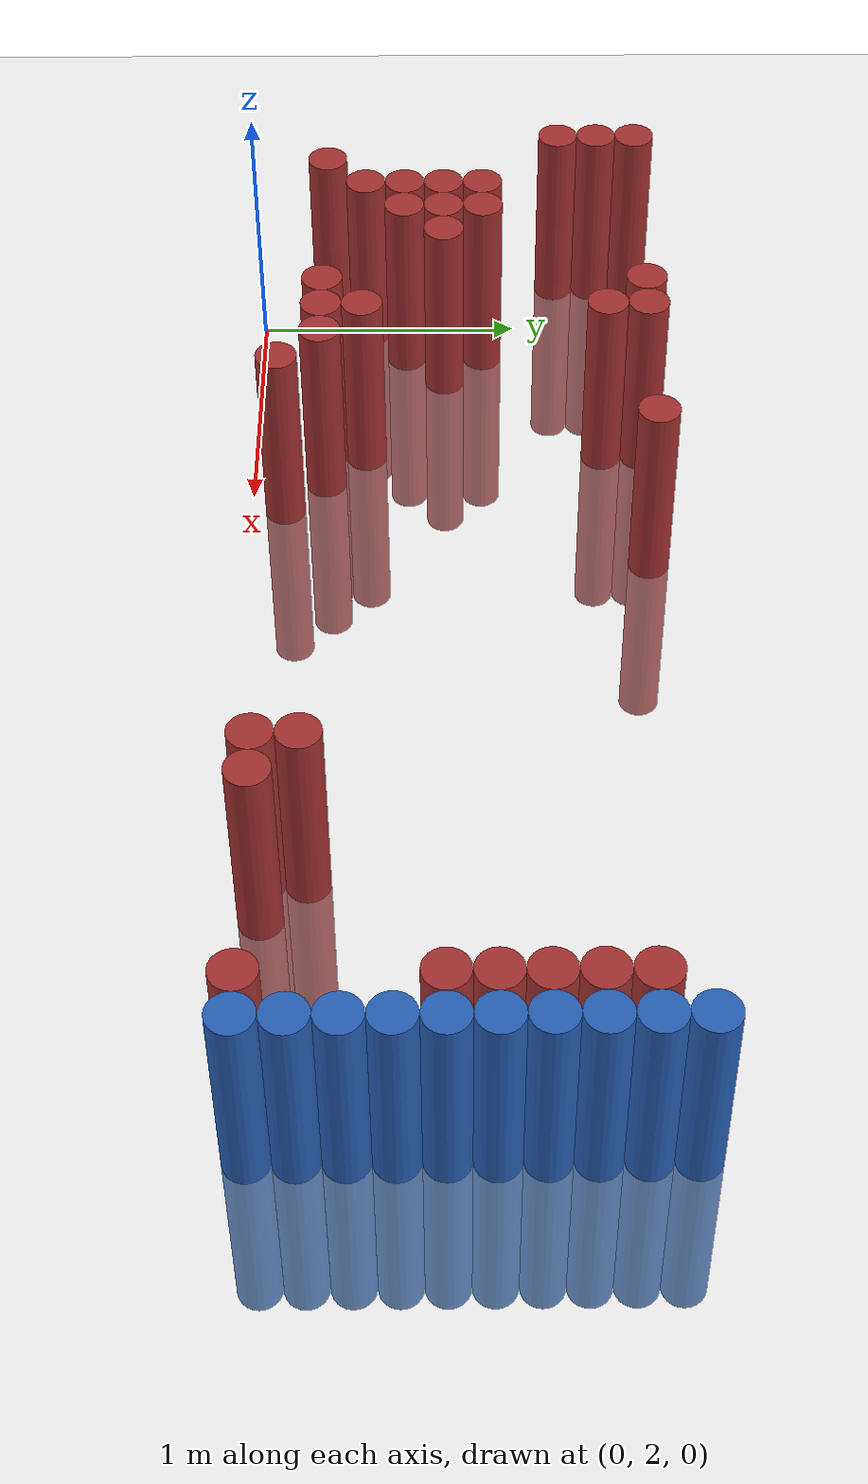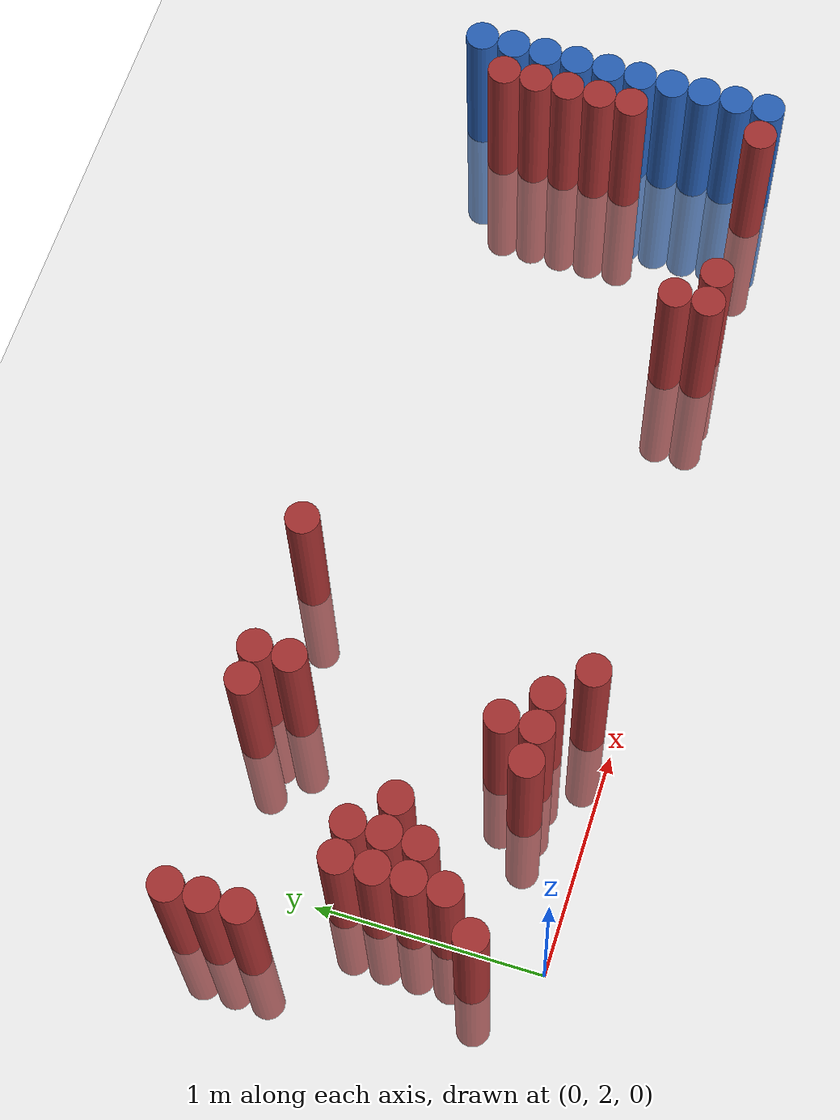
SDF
<sdf version="1.6">
 <world name="default">
  <model name="ground_plane">
   <static>1</static>
   <link name="link">
    <collision name="collision">
     <geometry><plane><normal>0 0 1</normal><size>100 100</size></plane></geometry>
     <surface><friction><ode><mu>100</mu><mu2>50</mu2></ode></friction></surface>
    </collision>
    <visual name="visual">
     <cast_shadows>0</cast_shadows>
     <geometry><plane><normal>0 0 1</normal><size>100 100</size></plane></geometry>
     <material>
      <script><uri>file://media/materials/scripts/gazebo.material</uri><name>Gazebo/Grey</name></script>
     </material>
    </visual>
   </link>
  </model>
  <model name="unit_cylinder_142">
   <static>1</static>
   <pose>3.925000 2.125000 0.000000 0.000000 0.000000 0.000000</pose>
   <link name="link">
    <inertial>
     <mass>1</mass>
     <inertia><ixx>0.145833</ixx><ixy>0</ixy><ixz>0</ixz><iyy>0.145833</iyy><iyz>0</iyz><izz>0.125</izz></inertia>
    </inertial>
    <collision name="collision">
     <geometry><cylinder><radius>0.075000</radius><length>1.5</length></cylinder></geometry>
    </collision>
    <visual name="visual">
     <geometry><cylinder><radius>0.075000</radius><length>1.5</length></cylinder></geometry>
     <material>
      <ambient>0.152000 0.379000 0.720000 1</ambient>
      <diffuse>0.152000 0.379000 0.720000 1</diffuse>
     </material>
     <material>
      <script><name>Gazebo/Grey</name><uri>file://media/materials/scripts/gazebo.material</uri></script>
     </material>
    </visual>
   </link>
  </model>
  <model name="unit_cylinder_144">
   <static>1</static>
   <pose>3.925000 2.275000 0.000000 0.000000 0.000000 0.000000</pose>
   <link name="link">
    <inertial>
     <mass>1</mass>
     <inertia><ixx>0.145833</ixx><ixy>0</ixy><ixz>0</ixz><iyy>0.145833</iyy><iyz>0</iyz><izz>0.125</izz></inertia>
    </inertial>
    <collision name="collision">
     <geometry><cylinder><radius>0.075000</radius><length>1.5</length></cylinder></geometry>
    </collision>
    <visual name="visual">
     <geometry><cylinder><radius>0.075000</radius><length>1.5</length></cylinder></geometry>
     <material>
      <ambient>0.152000 0.379000 0.720000 1</ambient>
      <diffuse>0.152000 0.379000 0.720000 1</diffuse>
     </material>
     <material>
      <script><name>Gazebo/Grey</name><uri>file://media/materials/scripts/gazebo.material</uri></script>
     </material>
    </visual>
   </link>
  </model>
  <model name="unit_cylinder_146">
   <static>1</static>
   <pose>3.925000 2.425000 0.000000 0.000000 0.000000 0.000000</pose>
   <link name="link">
    <inertial>
     <mass>1</mass>
     <inertia><ixx>0.145833</ixx><ixy>0</ixy><ixz>0</ixz><iyy>0.145833</iyy><iyz>0</iyz><izz>0.125</izz></inertia>
    </inertial>
    <collision name="collision">
     <geometry><cylinder><radius>0.075000</radius><length>1.5</length></cylinder></geometry>
    </collision>
    <visual name="visual">
     <geometry><cylinder><radius>0.075000</radius><length>1.5</length></cylinder></geometry>
     <material>
      <ambient>0.152000 0.379000 0.720000 1</ambient>
      <diffuse>0.152000 0.379000 0.720000 1</diffuse>
     </material>
     <material>
      <script><name>Gazebo/Grey</name><uri>file://media/materials/scripts/gazebo.material</uri></script>
     </material>
    </visual>
   </link>
  </model>
  <model name="unit_cylinder_148">
   <static>1</static>
   <pose>3.925000 2.575000 0.000000 0.000000 0.000000 0.000000</pose>
   <link name="link">
    <inertial>
     <mass>1</mass>
     <inertia><ixx>0.145833</ixx><ixy>0</ixy><ixz>0</ixz><iyy>0.145833</iyy><iyz>0</iyz><izz>0.125</izz></inertia>
    </inertial>
    <collision name="collision">
     <geometry><cylinder><radius>0.075000</radius><length>1.5</length></cylinder></geometry>
    </collision>
    <visual name="visual">
     <geometry><cylinder><radius>0.075000</radius><length>1.5</length></cylinder></geometry>
     <material>
      <ambient>0.152000 0.379000 0.720000 1</ambient>
      <diffuse>0.152000 0.379000 0.720000 1</diffuse>
     </material>
     <material>
      <script><name>Gazebo/Grey</name><uri>file://media/materials/scripts/gazebo.material</uri></script>
     </material>
    </visual>
   </link>
  </model>
  <model name="unit_cylinder_150">
   <static>1</static>
   <pose>3.925000 2.725000 0.000000 0.000000 0.000000 0.000000</pose>
   <link name="link">
    <inertial>
     <mass>1</mass>
     <inertia><ixx>0.145833</ixx><ixy>0</ixy><ixz>0</ixz><iyy>0.145833</iyy><iyz>0</iyz><izz>0.125</izz></inertia>
    </inertial>
    <collision name="collision">
     <geometry><cylinder><radius>0.075000</radius><length>1.5</length></cylinder></geometry>
    </collision>
    <visual name="visual">
     <geometry><cylinder><radius>0.075000</radius><length>1.5</length></cylinder></geometry>
     <material>
      <ambient>0.152000 0.379000 0.720000 1</ambient>
      <diffuse>0.152000 0.379000 0.720000 1</diffuse>
     </material>
     <material>
      <script><name>Gazebo/Grey</name><uri>file://media/materials/scripts/gazebo.material</uri></script>
     </material>
    </visual>
   </link>
  </model>
  <model name="unit_cylinder_152">
   <static>1</static>
   <pose>3.925000 2.875000 0.000000 0.000000 0.000000 0.000000</pose>
   <link name="link">
    <inertial>
     <mass>1</mass>
     <inertia><ixx>0.145833</ixx><ixy>0</ixy><ixz>0</ixz><iyy>0.145833</iyy><iyz>0</iyz><izz>0.125</izz></inertia>
    </inertial>
    <collision name="collision">
     <geometry><cylinder><radius>0.075000</radius><length>1.5</length></cylinder></geometry>
    </collision>
    <visual name="visual">
     <geometry><cylinder><radius>0.075000</radius><length>1.5</length></cylinder></geometry>
     <material>
      <ambient>0.152000 0.379000 0.720000 1</ambient>
      <diffuse>0.152000 0.379000 0.720000 1</diffuse>
     </material>
     <material>
      <script><name>Gazebo/Grey</name><uri>file://media/materials/scripts/gazebo.material</uri></script>
     </material>
    </visual>
   </link>
  </model>
  <model name="unit_cylinder_154">
   <static>1</static>
   <pose>3.925000 3.025000 0.000000 0.000000 0.000000 0.000000</pose>
   <link name="link">
    <inertial>
     <mass>1</mass>
     <inertia><ixx>0.145833</ixx><ixy>0</ixy><ixz>0</ixz><iyy>0.145833</iyy><iyz>0</iyz><izz>0.125</izz></inertia>
    </inertial>
    <collision name="collision">
     <geometry><cylinder><radius>0.075000</radius><length>1.5</length></cylinder></geometry>
    </collision>
    <visual name="visual">
     <geometry><cylinder><radius>0.075000</radius><length>1.5</length></cylinder></geometry>
     <material>
      <ambient>0.152000 0.379000 0.720000 1</ambient>
      <diffuse>0.152000 0.379000 0.720000 1</diffuse>
     </material>
     <material>
      <script><name>Gazebo/Grey</name><uri>file://media/materials/scripts/gazebo.material</uri></script>
     </material>
    </visual>
   </link>
  </model>
  <model name="unit_cylinder_156">
   <static>1</static>
   <pose>3.925000 3.175000 0.000000 0.000000 0.000000 0.000000</pose>
   <link name="link">
    <inertial>
     <mass>1</mass>
     <inertia><ixx>0.145833</ixx><ixy>0</ixy><ixz>0</ixz><iyy>0.145833</iyy><iyz>0</iyz><izz>0.125</izz></inertia>
    </inertial>
    <collision name="collision">
     <geometry><cylinder><radius>0.075000</radius><length>1.5</length></cylinder></geometry>
    </collision>
    <visual name="visual">
     <geometry><cylinder><radius>0.075000</radius><length>1.5</length></cylinder></geometry>
     <material>
      <ambient>0.152000 0.379000 0.720000 1</ambient>
      <diffuse>0.152000 0.379000 0.720000 1</diffuse>
     </material>
     <material>
      <script><name>Gazebo/Grey</name><uri>file://media/materials/scripts/gazebo.material</uri></script>
     </material>
    </visual>
   </link>
  </model>
  <model name="unit_cylinder_158">
   <static>1</static>
   <pose>3.925000 3.325000 0.000000 0.000000 0.000000 0.000000</pose>
   <link name="link">
    <inertial>
     <mass>1</mass>
     <inertia><ixx>0.145833</ixx><ixy>0</ixy><ixz>0</ixz><iyy>0.145833</iyy><iyz>0</iyz><izz>0.125</izz></inertia>
    </inertial>
    <collision name="collision">
     <geometry><cylinder><radius>0.075000</radius><length>1.5</length></cylinder></geometry>
    </collision>
    <visual name="visual">
     <geometry><cylinder><radius>0.075000</radius><length>1.5</length></cylinder></geometry>
     <material>
      <ambient>0.152000 0.379000 0.720000 1</ambient>
      <diffuse>0.152000 0.379000 0.720000 1</diffuse>
     </material>
     <material>
      <script><name>Gazebo/Grey</name><uri>file://media/materials/scripts/gazebo.material</uri></script>
     </material>
    </visual>
   </link>
  </model>
  <model name="unit_cylinder_160">
   <static>1</static>
   <pose>3.925000 3.475000 0.000000 0.000000 0.000000 0.000000</pose>
   <link name="link">
    <inertial>
     <mass>1</mass>
     <inertia><ixx>0.145833</ixx><ixy>0</ixy><ixz>0</ixz><iyy>0.145833</iyy><iyz>0</iyz><izz>0.125</izz></inertia>
    </inertial>
    <collision name="collision">
     <geometry><cylinder><radius>0.075000</radius><length>1.5</length></cylinder></geometry>
    </collision>
    <visual name="visual">
     <geometry><cylinder><radius>0.075000</radius><length>1.5</length></cylinder></geometry>
     <material>
      <ambient>0.152000 0.379000 0.720000 1</ambient>
      <diffuse>0.152000 0.379000 0.720000 1</diffuse>
     </material>
     <material>
      <script><name>Gazebo/Grey</name><uri>file://media/materials/scripts/gazebo.material</uri></script>
     </material>
    </visual>
   </link>
  </model>
  <model name="unit_cylinder_379">
   <static>1</static>
   <pose>-0.275000 3.175000 0.000000 0.000000 0.000000 0.000000</pose>
   <link name="link">
    <inertial>
     <mass>1</mass>
     <inertia><ixx>0.145833</ixx><ixy>0</ixy><ixz>0</ixz><iyy>0.145833</iyy><iyz>0</iyz><izz>0.125</izz></inertia>
    </inertial>
    <collision name="collision">
     <geometry><cylinder><radius>0.075000</radius><length>1.5</length></cylinder></geometry>
    </collision>
    <visual name="visual">
     <geometry><cylinder><radius>0.075000</radius><length>1.5</length></cylinder></geometry>
     <material>
      <ambient>0.648000 0.192000 0.192000 1</ambient>
      <diffuse>0.648000 0.192000 0.192000 1</diffuse>
     </material>
     <material>
      <script><name>Gazebo/Grey</name><uri>file://media/materials/scripts/gazebo.material</uri></script>
     </material>
    </visual>
   </link>
  </model>
  <model name="unit_cylinder_380">
   <static>1</static>
   <pose>-0.275000 3.325000 0.000000 0.000000 0.000000 0.000000</pose>
   <link name="link">
    <inertial>
     <mass>1</mass>
     <inertia><ixx>0.145833</ixx><ixy>0</ixy><ixz>0</ixz><iyy>0.145833</iyy><iyz>0</iyz><izz>0.125</izz></inertia>
    </inertial>
    <collision name="collision">
     <geometry><cylinder><radius>0.075000</radius><length>1.5</length></cylinder></geometry>
    </collision>
    <visual name="visual">
     <geometry><cylinder><radius>0.075000</radius><length>1.5</length></cylinder></geometry>
     <material>
      <ambient>0.648000 0.192000 0.192000 1</ambient>
      <diffuse>0.648000 0.192000 0.192000 1</diffuse>
     </material>
     <material>
      <script><name>Gazebo/Grey</name><uri>file://media/materials/scripts/gazebo.material</uri></script>
     </material>
    </visual>
   </link>
  </model>
  <model name="unit_cylinder_381">
   <static>1</static>
   <pose>-0.275000 3.475000 0.000000 0.000000 0.000000 0.000000</pose>
   <link name="link">
    <inertial>
     <mass>1</mass>
     <inertia><ixx>0.145833</ixx><ixy>0</ixy><ixz>0</ixz><iyy>0.145833</iyy><iyz>0</iyz><izz>0.125</izz></inertia>
    </inertial>
    <collision name="collision">
     <geometry><cylinder><radius>0.075000</radius><length>1.5</length></cylinder></geometry>
    </collision>
    <visual name="visual">
     <geometry><cylinder><radius>0.075000</radius><length>1.5</length></cylinder></geometry>
     <material>
      <ambient>0.648000 0.192000 0.192000 1</ambient>
      <diffuse>0.648000 0.192000 0.192000 1</diffuse>
     </material>
     <material>
      <script><name>Gazebo/Grey</name><uri>file://media/materials/scripts/gazebo.material</uri></script>
     </material>
    </visual>
   </link>
  </model>
  <model name="unit_cylinder_389">
   <static>1</static>
   <pose>-0.125000 2.275000 0.000000 0.000000 0.000000 0.000000</pose>
   <link name="link">
    <inertial>
     <mass>1</mass>
     <inertia><ixx>0.145833</ixx><ixy>0</ixy><ixz>0</ixz><iyy>0.145833</iyy><iyz>0</iyz><izz>0.125</izz></inertia>
    </inertial>
    <collision name="collision">
     <geometry><cylinder><radius>0.075000</radius><length>1.5</length></cylinder></geometry>
    </collision>
    <visual name="visual">
     <geometry><cylinder><radius>0.075000</radius><length>1.5</length></cylinder></geometry>
     <material>
      <ambient>0.648000 0.192000 0.192000 1</ambient>
      <diffuse>0.648000 0.192000 0.192000 1</diffuse>
     </material>
     <material>
      <script><name>Gazebo/Grey</name><uri>file://media/materials/scripts/gazebo.material</uri></script>
     </material>
    </visual>
   </link>
  </model>
  <model name="unit_cylinder_394">
   <static>1</static>
   <pose>0.025000 2.425000 0.000000 0.000000 0.000000 0.000000</pose>
   <link name="link">
    <inertial>
     <mass>1</mass>
     <inertia><ixx>0.145833</ixx><ixy>0</ixy><ixz>0</ixz><iyy>0.145833</iyy><iyz>0</iyz><izz>0.125</izz></inertia>
    </inertial>
    <collision name="collision">
     <geometry><cylinder><radius>0.075000</radius><length>1.5</length></cylinder></geometry>
    </collision>
    <visual name="visual">
     <geometry><cylinder><radius>0.075000</radius><length>1.5</length></cylinder></geometry>
     <material>
      <ambient>0.648000 0.192000 0.192000 1</ambient>
      <diffuse>0.648000 0.192000 0.192000 1</diffuse>
     </material>
     <material>
      <script><name>Gazebo/Grey</name><uri>file://media/materials/scripts/gazebo.material</uri></script>
     </material>
    </visual>
   </link>
  </model>
  <model name="unit_cylinder_395">
   <static>1</static>
   <pose>0.025000 2.575000 0.000000 0.000000 0.000000 0.000000</pose>
   <link name="link">
    <inertial>
     <mass>1</mass>
     <inertia><ixx>0.145833</ixx><ixy>0</ixy><ixz>0</ixz><iyy>0.145833</iyy><iyz>0</iyz><izz>0.125</izz></inertia>
    </inertial>
    <collision name="collision">
     <geometry><cylinder><radius>0.075000</radius><length>1.5</length></cylinder></geometry>
    </collision>
    <visual name="visual">
     <geometry><cylinder><radius>0.075000</radius><length>1.5</length></cylinder></geometry>
     <material>
      <ambient>0.648000 0.192000 0.192000 1</ambient>
      <diffuse>0.648000 0.192000 0.192000 1</diffuse>
     </material>
     <material>
      <script><name>Gazebo/Grey</name><uri>file://media/materials/scripts/gazebo.material</uri></script>
     </material>
    </visual>
   </link>
  </model>
  <model name="unit_cylinder_396">
   <static>1</static>
   <pose>0.025000 2.725000 0.000000 0.000000 0.000000 0.000000</pose>
   <link name="link">
    <inertial>
     <mass>1</mass>
     <inertia><ixx>0.145833</ixx><ixy>0</ixy><ixz>0</ixz><iyy>0.145833</iyy><iyz>0</iyz><izz>0.125</izz></inertia>
    </inertial>
    <collision name="collision">
     <geometry><cylinder><radius>0.075000</radius><length>1.5</length></cylinder></geometry>
    </collision>
    <visual name="visual">
     <geometry><cylinder><radius>0.075000</radius><length>1.5</length></cylinder></geometry>
     <material>
      <ambient>0.648000 0.192000 0.192000 1</ambient>
      <diffuse>0.648000 0.192000 0.192000 1</diffuse>
     </material>
     <material>
      <script><name>Gazebo/Grey</name><uri>file://media/materials/scripts/gazebo.material</uri></script>
     </material>
    </visual>
   </link>
  </model>
  <model name="unit_cylinder_397">
   <static>1</static>
   <pose>0.025000 2.875000 0.000000 0.000000 0.000000 0.000000</pose>
   <link name="link">
    <inertial>
     <mass>1</mass>
     <inertia><ixx>0.145833</ixx><ixy>0</ixy><ixz>0</ixz><iyy>0.145833</iyy><iyz>0</iyz><izz>0.125</izz></inertia>
    </inertial>
    <collision name="collision">
     <geometry><cylinder><radius>0.075000</radius><length>1.5</length></cylinder></geometry>
    </collision>
    <visual name="visual">
     <geometry><cylinder><radius>0.075000</radius><length>1.5</length></cylinder></geometry>
     <material>
      <ambient>0.648000 0.192000 0.192000 1</ambient>
      <diffuse>0.648000 0.192000 0.192000 1</diffuse>
     </material>
     <material>
      <script><name>Gazebo/Grey</name><uri>file://media/materials/scripts/gazebo.material</uri></script>
     </material>
    </visual>
   </link>
  </model>
  <model name="unit_cylinder_400">
   <static>1</static>
   <pose>0.175000 2.575000 0.000000 0.000000 0.000000 0.000000</pose>
   <link name="link">
    <inertial>
     <mass>1</mass>
     <inertia><ixx>0.145833</ixx><ixy>0</ixy><ixz>0</ixz><iyy>0.145833</iyy><iyz>0</iyz><izz>0.125</izz></inertia>
    </inertial>
    <collision name="collision">
     <geometry><cylinder><radius>0.075000</radius><length>1.5</length></cylinder></geometry>
    </collision>
    <visual name="visual">
     <geometry><cylinder><radius>0.075000</radius><length>1.5</length></cylinder></geometry>
     <material>
      <ambient>0.648000 0.192000 0.192000 1</ambient>
      <diffuse>0.648000 0.192000 0.192000 1</diffuse>
     </material>
     <material>
      <script><name>Gazebo/Grey</name><uri>file://media/materials/scripts/gazebo.material</uri></script>
     </material>
    </visual>
   </link>
  </model>
  <model name="unit_cylinder_401">
   <static>1</static>
   <pose>0.175000 2.725000 0.000000 0.000000 0.000000 0.000000</pose>
   <link name="link">
    <inertial>
     <mass>1</mass>
     <inertia><ixx>0.145833</ixx><ixy>0</ixy><ixz>0</ixz><iyy>0.145833</iyy><iyz>0</iyz><izz>0.125</izz></inertia>
    </inertial>
    <collision name="collision">
     <geometry><cylinder><radius>0.075000</radius><length>1.5</length></cylinder></geometry>
    </collision>
    <visual name="visual">
     <geometry><cylinder><radius>0.075000</radius><length>1.5</length></cylinder></geometry>
     <material>
      <ambient>0.648000 0.192000 0.192000 1</ambient>
      <diffuse>0.648000 0.192000 0.192000 1</diffuse>
     </material>
     <material>
      <script><name>Gazebo/Grey</name><uri>file://media/materials/scripts/gazebo.material</uri></script>
     </material>
    </visual>
   </link>
  </model>
  <model name="unit_cylinder_402">
   <static>1</static>
   <pose>0.175000 2.875000 0.000000 0.000000 0.000000 0.000000</pose>
   <link name="link">
    <inertial>
     <mass>1</mass>
     <inertia><ixx>0.145833</ixx><ixy>0</ixy><ixz>0</ixz><iyy>0.145833</iyy><iyz>0</iyz><izz>0.125</izz></inertia>
    </inertial>
    <collision name="collision">
     <geometry><cylinder><radius>0.075000</radius><length>1.5</length></cylinder></geometry>
    </collision>
    <visual name="visual">
     <geometry><cylinder><radius>0.075000</radius><length>1.5</length></cylinder></geometry>
     <material>
      <ambient>0.648000 0.192000 0.192000 1</ambient>
      <diffuse>0.648000 0.192000 0.192000 1</diffuse>
     </material>
     <material>
      <script><name>Gazebo/Grey</name><uri>file://media/materials/scripts/gazebo.material</uri></script>
     </material>
    </visual>
   </link>
  </model>
  <model name="unit_cylinder_404">
   <static>1</static>
   <pose>0.325000 2.725000 0.000000 0.000000 0.000000 0.000000</pose>
   <link name="link">
    <inertial>
     <mass>1</mass>
     <inertia><ixx>0.145833</ixx><ixy>0</ixy><ixz>0</ixz><iyy>0.145833</iyy><iyz>0</iyz><izz>0.125</izz></inertia>
    </inertial>
    <collision name="collision">
     <geometry><cylinder><radius>0.075000</radius><length>1.5</length></cylinder></geometry>
    </collision>
    <visual name="visual">
     <geometry><cylinder><radius>0.075000</radius><length>1.5</length></cylinder></geometry>
     <material>
      <ambient>0.648000 0.192000 0.192000 1</ambient>
      <diffuse>0.648000 0.192000 0.192000 1</diffuse>
     </material>
     <material>
      <script><name>Gazebo/Grey</name><uri>file://media/materials/scripts/gazebo.material</uri></script>
     </material>
    </visual>
   </link>
  </model>
  <model name="unit_cylinder_408">
   <static>1</static>
   <pose>0.625000 2.275000 0.000000 0.000000 0.000000 0.000000</pose>
   <link name="link">
    <inertial>
     <mass>1</mass>
     <inertia><ixx>0.145833</ixx><ixy>0</ixy><ixz>0</ixz><iyy>0.145833</iyy><iyz>0</iyz><izz>0.125</izz></inertia>
    </inertial>
    <collision name="collision">
     <geometry><cylinder><radius>0.075000</radius><length>1.5</length></cylinder></geometry>
    </collision>
    <visual name="visual">
     <geometry><cylinder><radius>0.075000</radius><length>1.5</length></cylinder></geometry>
     <material>
      <ambient>0.648000 0.192000 0.192000 1</ambient>
      <diffuse>0.648000 0.192000 0.192000 1</diffuse>
     </material>
     <material>
      <script><name>Gazebo/Grey</name><uri>file://media/materials/scripts/gazebo.material</uri></script>
     </material>
    </visual>
   </link>
  </model>
  <model name="unit_cylinder_409">
   <static>1</static>
   <pose>0.625000 3.475000 0.000000 0.000000 0.000000 0.000000</pose>
   <link name="link">
    <inertial>
     <mass>1</mass>
     <inertia><ixx>0.145833</ixx><ixy>0</ixy><ixz>0</ixz><iyy>0.145833</iyy><iyz>0</iyz><izz>0.125</izz></inertia>
    </inertial>
    <collision name="collision">
     <geometry><cylinder><radius>0.075000</radius><length>1.5</length></cylinder></geometry>
    </collision>
    <visual name="visual">
     <geometry><cylinder><radius>0.075000</radius><length>1.5</length></cylinder></geometry>
     <material>
      <ambient>0.648000 0.192000 0.192000 1</ambient>
      <diffuse>0.648000 0.192000 0.192000 1</diffuse>
     </material>
     <material>
      <script><name>Gazebo/Grey</name><uri>file://media/materials/scripts/gazebo.material</uri></script>
     </material>
    </visual>
   </link>
  </model>
  <model name="unit_cylinder_412">
   <static>1</static>
   <pose>0.775000 2.275000 0.000000 0.000000 0.000000 0.000000</pose>
   <link name="link">
    <inertial>
     <mass>1</mass>
     <inertia><ixx>0.145833</ixx><ixy>0</ixy><ixz>0</ixz><iyy>0.145833</iyy><iyz>0</iyz><izz>0.125</izz></inertia>
    </inertial>
    <collision name="collision">
     <geometry><cylinder><radius>0.075000</radius><length>1.5</length></cylinder></geometry>
    </collision>
    <visual name="visual">
     <geometry><cylinder><radius>0.075000</radius><length>1.5</length></cylinder></geometry>
     <material>
      <ambient>0.648000 0.192000 0.192000 1</ambient>
      <diffuse>0.648000 0.192000 0.192000 1</diffuse>
     </material>
     <material>
      <script><name>Gazebo/Grey</name><uri>file://media/materials/scripts/gazebo.material</uri></script>
     </material>
    </visual>
   </link>
  </model>
  <model name="unit_cylinder_413">
   <static>1</static>
   <pose>0.775000 2.425000 0.000000 0.000000 0.000000 0.000000</pose>
   <link name="link">
    <inertial>
     <mass>1</mass>
     <inertia><ixx>0.145833</ixx><ixy>0</ixy><ixz>0</ixz><iyy>0.145833</iyy><iyz>0</iyz><izz>0.125</izz></inertia>
    </inertial>
    <collision name="collision">
     <geometry><cylinder><radius>0.075000</radius><length>1.5</length></cylinder></geometry>
    </collision>
    <visual name="visual">
     <geometry><cylinder><radius>0.075000</radius><length>1.5</length></cylinder></geometry>
     <material>
      <ambient>0.648000 0.192000 0.192000 1</ambient>
      <diffuse>0.648000 0.192000 0.192000 1</diffuse>
     </material>
     <material>
      <script><name>Gazebo/Grey</name><uri>file://media/materials/scripts/gazebo.material</uri></script>
     </material>
    </visual>
   </link>
  </model>
  <model name="unit_cylinder_414">
   <static>1</static>
   <pose>0.775000 3.325000 0.000000 0.000000 0.000000 0.000000</pose>
   <link name="link">
    <inertial>
     <mass>1</mass>
     <inertia><ixx>0.145833</ixx><ixy>0</ixy><ixz>0</ixz><iyy>0.145833</iyy><iyz>0</iyz><izz>0.125</izz></inertia>
    </inertial>
    <collision name="collision">
     <geometry><cylinder><radius>0.075000</radius><length>1.5</length></cylinder></geometry>
    </collision>
    <visual name="visual">
     <geometry><cylinder><radius>0.075000</radius><length>1.5</length></cylinder></geometry>
     <material>
      <ambient>0.648000 0.192000 0.192000 1</ambient>
      <diffuse>0.648000 0.192000 0.192000 1</diffuse>
     </material>
     <material>
      <script><name>Gazebo/Grey</name><uri>file://media/materials/scripts/gazebo.material</uri></script>
     </material>
    </visual>
   </link>
  </model>
  <model name="unit_cylinder_415">
   <static>1</static>
   <pose>0.775000 3.475000 0.000000 0.000000 0.000000 0.000000</pose>
   <link name="link">
    <inertial>
     <mass>1</mass>
     <inertia><ixx>0.145833</ixx><ixy>0</ixy><ixz>0</ixz><iyy>0.145833</iyy><iyz>0</iyz><izz>0.125</izz></inertia>
    </inertial>
    <collision name="collision">
     <geometry><cylinder><radius>0.075000</radius><length>1.5</length></cylinder></geometry>
    </collision>
    <visual name="visual">
     <geometry><cylinder><radius>0.075000</radius><length>1.5</length></cylinder></geometry>
     <material>
      <ambient>0.648000 0.192000 0.192000 1</ambient>
      <diffuse>0.648000 0.192000 0.192000 1</diffuse>
     </material>
     <material>
      <script><name>Gazebo/Grey</name><uri>file://media/materials/scripts/gazebo.material</uri></script>
     </material>
    </visual>
   </link>
  </model>
  <model name="unit_cylinder_418">
   <static>1</static>
   <pose>0.925000 2.275000 0.000000 0.000000 0.000000 0.000000</pose>
   <link name="link">
    <inertial>
     <mass>1</mass>
     <inertia><ixx>0.145833</ixx><ixy>0</ixy><ixz>0</ixz><iyy>0.145833</iyy><iyz>0</iyz><izz>0.125</izz></inertia>
    </inertial>
    <collision name="collision">
     <geometry><cylinder><radius>0.075000</radius><length>1.5</length></cylinder></geometry>
    </collision>
    <visual name="visual">
     <geometry><cylinder><radius>0.075000</radius><length>1.5</length></cylinder></geometry>
     <material>
      <ambient>0.648000 0.192000 0.192000 1</ambient>
      <diffuse>0.648000 0.192000 0.192000 1</diffuse>
     </material>
     <material>
      <script><name>Gazebo/Grey</name><uri>file://media/materials/scripts/gazebo.material</uri></script>
     </material>
    </visual>
   </link>
  </model>
  <model name="unit_cylinder_420">
   <static>1</static>
   <pose>1.075000 2.125000 0.000000 0.000000 0.000000 0.000000</pose>
   <link name="link">
    <inertial>
     <mass>1</mass>
     <inertia><ixx>0.145833</ixx><ixy>0</ixy><ixz>0</ixz><iyy>0.145833</iyy><iyz>0</iyz><izz>0.125</izz></inertia>
    </inertial>
    <collision name="collision">
     <geometry><cylinder><radius>0.075000</radius><length>1.5</length></cylinder></geometry>
    </collision>
    <visual name="visual">
     <geometry><cylinder><radius>0.075000</radius><length>1.5</length></cylinder></geometry>
     <material>
      <ambient>0.648000 0.192000 0.192000 1</ambient>
      <diffuse>0.648000 0.192000 0.192000 1</diffuse>
     </material>
     <material>
      <script><name>Gazebo/Grey</name><uri>file://media/materials/scripts/gazebo.material</uri></script>
     </material>
    </visual>
   </link>
  </model>
  <model name="unit_cylinder_429">
   <static>1</static>
   <pose>1.375000 3.475000 0.000000 0.000000 0.000000 0.000000</pose>
   <link name="link">
    <inertial>
     <mass>1</mass>
     <inertia><ixx>0.145833</ixx><ixy>0</ixy><ixz>0</ixz><iyy>0.145833</iyy><iyz>0</iyz><izz>0.125</izz></inertia>
    </inertial>
    <collision name="collision">
     <geometry><cylinder><radius>0.075000</radius><length>1.5</length></cylinder></geometry>
    </collision>
    <visual name="visual">
     <geometry><cylinder><radius>0.075000</radius><length>1.5</length></cylinder></geometry>
     <material>
      <ambient>0.648000 0.192000 0.192000 1</ambient>
      <diffuse>0.648000 0.192000 0.192000 1</diffuse>
     </material>
     <material>
      <script><name>Gazebo/Grey</name><uri>file://media/materials/scripts/gazebo.material</uri></script>
     </material>
    </visual>
   </link>
  </model>
  <model name="unit_cylinder_467">
   <static>1</static>
   <pose>2.875000 2.125000 0.000000 0.000000 0.000000 0.000000</pose>
   <link name="link">
    <inertial>
     <mass>1</mass>
     <inertia><ixx>0.145833</ixx><ixy>0</ixy><ixz>0</ixz><iyy>0.145833</iyy><iyz>0</iyz><izz>0.125</izz></inertia>
    </inertial>
    <collision name="collision">
     <geometry><cylinder><radius>0.075000</radius><length>1.5</length></cylinder></geometry>
    </collision>
    <visual name="visual">
     <geometry><cylinder><radius>0.075000</radius><length>1.5</length></cylinder></geometry>
     <material>
      <ambient>0.648000 0.192000 0.192000 1</ambient>
      <diffuse>0.648000 0.192000 0.192000 1</diffuse>
     </material>
     <material>
      <script><name>Gazebo/Grey</name><uri>file://media/materials/scripts/gazebo.material</uri></script>
     </material>
    </visual>
   </link>
  </model>
  <model name="unit_cylinder_468">
   <static>1</static>
   <pose>2.875000 2.275000 0.000000 0.000000 0.000000 0.000000</pose>
   <link name="link">
    <inertial>
     <mass>1</mass>
     <inertia><ixx>0.145833</ixx><ixy>0</ixy><ixz>0</ixz><iyy>0.145833</iyy><iyz>0</iyz><izz>0.125</izz></inertia>
    </inertial>
    <collision name="collision">
     <geometry><cylinder><radius>0.075000</radius><length>1.5</length></cylinder></geometry>
    </collision>
    <visual name="visual">
     <geometry><cylinder><radius>0.075000</radius><length>1.5</length></cylinder></geometry>
     <material>
      <ambient>0.648000 0.192000 0.192000 1</ambient>
      <diffuse>0.648000 0.192000 0.192000 1</diffuse>
     </material>
     <material>
      <script><name>Gazebo/Grey</name><uri>file://media/materials/scripts/gazebo.material</uri></script>
     </material>
    </visual>
   </link>
  </model>
  <model name="unit_cylinder_473">
   <static>1</static>
   <pose>3.025000 2.125000 0.000000 0.000000 0.000000 0.000000</pose>
   <link name="link">
    <inertial>
     <mass>1</mass>
     <inertia><ixx>0.145833</ixx><ixy>0</ixy><ixz>0</ixz><iyy>0.145833</iyy><iyz>0</iyz><izz>0.125</izz></inertia>
    </inertial>
    <collision name="collision">
     <geometry><cylinder><radius>0.075000</radius><length>1.5</length></cylinder></geometry>
    </collision>
    <visual name="visual">
     <geometry><cylinder><radius>0.075000</radius><length>1.5</length></cylinder></geometry>
     <material>
      <ambient>0.648000 0.192000 0.192000 1</ambient>
      <diffuse>0.648000 0.192000 0.192000 1</diffuse>
     </material>
     <material>
      <script><name>Gazebo/Grey</name><uri>file://media/materials/scripts/gazebo.material</uri></script>
     </material>
    </visual>
   </link>
  </model>
  <model name="unit_cylinder_499">
   <static>1</static>
   <pose>3.775000 2.125000 0.000000 0.000000 0.000000 0.000000</pose>
   <link name="link">
    <inertial>
     <mass>1</mass>
     <inertia><ixx>0.145833</ixx><ixy>0</ixy><ixz>0</ixz><iyy>0.145833</iyy><iyz>0</iyz><izz>0.125</izz></inertia>
    </inertial>
    <collision name="collision">
     <geometry><cylinder><radius>0.075000</radius><length>1.5</length></cylinder></geometry>
    </collision>
    <visual name="visual">
     <geometry><cylinder><radius>0.075000</radius><length>1.5</length></cylinder></geometry>
     <material>
      <ambient>0.648000 0.192000 0.192000 1</ambient>
      <diffuse>0.648000 0.192000 0.192000 1</diffuse>
     </material>
     <material>
      <script><name>Gazebo/Grey</name><uri>file://media/materials/scripts/gazebo.material</uri></script>
     </material>
    </visual>
   </link>
  </model>
  <model name="unit_cylinder_500">
   <static>1</static>
   <pose>3.775000 2.725000 0.000000 0.000000 0.000000 0.000000</pose>
   <link name="link">
    <inertial>
     <mass>1</mass>
     <inertia><ixx>0.145833</ixx><ixy>0</ixy><ixz>0</ixz><iyy>0.145833</iyy><iyz>0</iyz><izz>0.125</izz></inertia>
    </inertial>
    <collision name="collision">
     <geometry><cylinder><radius>0.075000</radius><length>1.5</length></cylinder></geometry>
    </collision>
    <visual name="visual">
     <geometry><cylinder><radius>0.075000</radius><length>1.5</length></cylinder></geometry>
     <material>
      <ambient>0.648000 0.192000 0.192000 1</ambient>
      <diffuse>0.648000 0.192000 0.192000 1</diffuse>
     </material>
     <material>
      <script><name>Gazebo/Grey</name><uri>file://media/materials/scripts/gazebo.material</uri></script>
     </material>
    </visual>
   </link>
  </model>
  <model name="unit_cylinder_501">
   <static>1</static>
   <pose>3.775000 2.875000 0.000000 0.000000 0.000000 0.000000</pose>
   <link name="link">
    <inertial>
     <mass>1</mass>
     <inertia><ixx>0.145833</ixx><ixy>0</ixy><ixz>0</ixz><iyy>0.145833</iyy><iyz>0</iyz><izz>0.125</izz></inertia>
    </inertial>
    <collision name="collision">
     <geometry><cylinder><radius>0.075000</radius><length>1.5</length></cylinder></geometry>
    </collision>
    <visual name="visual">
     <geometry><cylinder><radius>0.075000</radius><length>1.5</length></cylinder></geometry>
     <material>
      <ambient>0.648000 0.192000 0.192000 1</ambient>
      <diffuse>0.648000 0.192000 0.192000 1</diffuse>
     </material>
     <material>
      <script><name>Gazebo/Grey</name><uri>file://media/materials/scripts/gazebo.material</uri></script>
     </material>
    </visual>
   </link>
  </model>
  <model name="unit_cylinder_502">
   <static>1</static>
   <pose>3.775000 3.025000 0.000000 0.000000 0.000000 0.000000</pose>
   <link name="link">
    <inertial>
     <mass>1</mass>
     <inertia><ixx>0.145833</ixx><ixy>0</ixy><ixz>0</ixz><iyy>0.145833</iyy><iyz>0</iyz><izz>0.125</izz></inertia>
    </inertial>
    <collision name="collision">
     <geometry><cylinder><radius>0.075000</radius><length>1.5</length></cylinder></geometry>
    </collision>
    <visual name="visual">
     <geometry><cylinder><radius>0.075000</radius><length>1.5</length></cylinder></geometry>
     <material>
      <ambient>0.648000 0.192000 0.192000 1</ambient>
      <diffuse>0.648000 0.192000 0.192000 1</diffuse>
     </material>
     <material>
      <script><name>Gazebo/Grey</name><uri>file://media/materials/scripts/gazebo.material</uri></script>
     </material>
    </visual>
   </link>
  </model>
  <model name="unit_cylinder_503">
   <static>1</static>
   <pose>3.775000 3.175000 0.000000 0.000000 0.000000 0.000000</pose>
   <link name="link">
    <inertial>
     <mass>1</mass>
     <inertia><ixx>0.145833</ixx><ixy>0</ixy><ixz>0</ixz><iyy>0.145833</iyy><iyz>0</iyz><izz>0.125</izz></inertia>
    </inertial>
    <collision name="collision">
     <geometry><cylinder><radius>0.075000</radius><length>1.5</length></cylinder></geometry>
    </collision>
    <visual name="visual">
     <geometry><cylinder><radius>0.075000</radius><length>1.5</length></cylinder></geometry>
     <material>
      <ambient>0.648000 0.192000 0.192000 1</ambient>
      <diffuse>0.648000 0.192000 0.192000 1</diffuse>
     </material>
     <material>
      <script><name>Gazebo/Grey</name><uri>file://media/materials/scripts/gazebo.material</uri></script>
     </material>
    </visual>
   </link>
  </model>
  <model name="unit_cylinder_504">
   <static>1</static>
   <pose>3.775000 3.325000 0.000000 0.000000 0.000000 0.000000</pose>
   <link name="link">
    <inertial>
     <mass>1</mass>
     <inertia><ixx>0.145833</ixx><ixy>0</ixy><ixz>0</ixz><iyy>0.145833</iyy><iyz>0</iyz><izz>0.125</izz></inertia>
    </inertial>
    <collision name="collision">
     <geometry><cylinder><radius>0.075000</radius><length>1.5</length></cylinder></geometry>
    </collision>
    <visual name="visual">
     <geometry><cylinder><radius>0.075000</radius><length>1.5</length></cylinder></geometry>
     <material>
      <ambient>0.648000 0.192000 0.192000 1</ambient>
      <diffuse>0.648000 0.192000 0.192000 1</diffuse>
     </material>
     <material>
      <script><name>Gazebo/Grey</name><uri>file://media/materials/scripts/gazebo.material</uri></script>
     </material>
    </visual>
   </link>
  </model>
  <model name="unit_cylinder_534">
   <static>1</static>
   <pose>3.925000 2.125000 0.000000 0.000000 0.000000 0.000000</pose>
   <link name="link">
    <inertial>
     <mass>1</mass>
     <inertia><ixx>0.145833</ixx><ixy>0</ixy><ixz>0</ixz><iyy>0.145833</iyy><iyz>0</iyz><izz>0.125</izz></inertia>
    </inertial>
    <collision name="collision">
     <geometry><cylinder><radius>0.075000</radius><length>1.5</length></cylinder></geometry>
    </collision>
    <visual name="visual">
     <geometry><cylinder><radius>0.075000</radius><length>1.5</length></cylinder></geometry>
     <material>
      <ambient>0.152000 0.379000 0.720000 1</ambient>
      <diffuse>0.152000 0.379000 0.720000 1</diffuse>
     </material>
     <material>
      <script><name>Gazebo/Grey</name><uri>file://media/materials/scripts/gazebo.material</uri></script>
     </material>
    </visual>
   </link>
  </model>
  <model name="unit_cylinder_535">
   <static>1</static>
   <pose>3.925000 2.275000 0.000000 0.000000 0.000000 0.000000</pose>
   <link name="link">
    <inertial>
     <mass>1</mass>
     <inertia><ixx>0.145833</ixx><ixy>0</ixy><ixz>0</ixz><iyy>0.145833</iyy><iyz>0</iyz><izz>0.125</izz></inertia>
    </inertial>
    <collision name="collision">
     <geometry><cylinder><radius>0.075000</radius><length>1.5</length></cylinder></geometry>
    </collision>
    <visual name="visual">
     <geometry><cylinder><radius>0.075000</radius><length>1.5</length></cylinder></geometry>
     <material>
      <ambient>0.152000 0.379000 0.720000 1</ambient>
      <diffuse>0.152000 0.379000 0.720000 1</diffuse>
     </material>
     <material>
      <script><name>Gazebo/Grey</name><uri>file://media/materials/scripts/gazebo.material</uri></script>
     </material>
    </visual>
   </link>
  </model>
  <model name="unit_cylinder_536">
   <static>1</static>
   <pose>3.925000 2.425000 0.000000 0.000000 0.000000 0.000000</pose>
   <link name="link">
    <inertial>
     <mass>1</mass>
     <inertia><ixx>0.145833</ixx><ixy>0</ixy><ixz>0</ixz><iyy>0.145833</iyy><iyz>0</iyz><izz>0.125</izz></inertia>
    </inertial>
    <collision name="collision">
     <geometry><cylinder><radius>0.075000</radius><length>1.5</length></cylinder></geometry>
    </collision>
    <visual name="visual">
     <geometry><cylinder><radius>0.075000</radius><length>1.5</length></cylinder></geometry>
     <material>
      <ambient>0.152000 0.379000 0.720000 1</ambient>
      <diffuse>0.152000 0.379000 0.720000 1</diffuse>
     </material>
     <material>
      <script><name>Gazebo/Grey</name><uri>file://media/materials/scripts/gazebo.material</uri></script>
     </material>
    </visual>
   </link>
  </model>
  <model name="unit_cylinder_537">
   <static>1</static>
   <pose>3.925000 2.575000 0.000000 0.000000 0.000000 0.000000</pose>
   <link name="link">
    <inertial>
     <mass>1</mass>
     <inertia><ixx>0.145833</ixx><ixy>0</ixy><ixz>0</ixz><iyy>0.145833</iyy><iyz>0</iyz><izz>0.125</izz></inertia>
    </inertial>
    <collision name="collision">
     <geometry><cylinder><radius>0.075000</radius><length>1.5</length></cylinder></geometry>
    </collision>
    <visual name="visual">
     <geometry><cylinder><radius>0.075000</radius><length>1.5</length></cylinder></geometry>
     <material>
      <ambient>0.152000 0.379000 0.720000 1</ambient>
      <diffuse>0.152000 0.379000 0.720000 1</diffuse>
     </material>
     <material>
      <script><name>Gazebo/Grey</name><uri>file://media/materials/scripts/gazebo.material</uri></script>
     </material>
    </visual>
   </link>
  </model>
  <model name="unit_cylinder_538">
   <static>1</static>
   <pose>3.925000 2.725000 0.000000 0.000000 0.000000 0.000000</pose>
   <link name="link">
    <inertial>
     <mass>1</mass>
     <inertia><ixx>0.145833</ixx><ixy>0</ixy><ixz>0</ixz><iyy>0.145833</iyy><iyz>0</iyz><izz>0.125</izz></inertia>
    </inertial>
    <collision name="collision">
     <geometry><cylinder><radius>0.075000</radius><length>1.5</length></cylinder></geometry>
    </collision>
    <visual name="visual">
     <geometry><cylinder><radius>0.075000</radius><length>1.5</length></cylinder></geometry>
     <material>
      <ambient>0.152000 0.379000 0.720000 1</ambient>
      <diffuse>0.152000 0.379000 0.720000 1</diffuse>
     </material>
     <material>
      <script><name>Gazebo/Grey</name><uri>file://media/materials/scripts/gazebo.material</uri></script>
     </material>
    </visual>
   </link>
  </model>
  <model name="unit_cylinder_539">
   <static>1</static>
   <pose>3.925000 2.875000 0.000000 0.000000 0.000000 0.000000</pose>
   <link name="link">
    <inertial>
     <mass>1</mass>
     <inertia><ixx>0.145833</ixx><ixy>0</ixy><ixz>0</ixz><iyy>0.145833</iyy><iyz>0</iyz><izz>0.125</izz></inertia>
    </inertial>
    <collision name="collision">
     <geometry><cylinder><radius>0.075000</radius><length>1.5</length></cylinder></geometry>
    </collision>
    <visual name="visual">
     <geometry><cylinder><radius>0.075000</radius><length>1.5</length></cylinder></geometry>
     <material>
      <ambient>0.152000 0.379000 0.720000 1</ambient>
      <diffuse>0.152000 0.379000 0.720000 1</diffuse>
     </material>
     <material>
      <script><name>Gazebo/Grey</name><uri>file://media/materials/scripts/gazebo.material</uri></script>
     </material>
    </visual>
   </link>
  </model>
  <model name="unit_cylinder_540">
   <static>1</static>
   <pose>3.925000 3.025000 0.000000 0.000000 0.000000 0.000000</pose>
   <link name="link">
    <inertial>
     <mass>1</mass>
     <inertia><ixx>0.145833</ixx><ixy>0</ixy><ixz>0</ixz><iyy>0.145833</iyy><iyz>0</iyz><izz>0.125</izz></inertia>
    </inertial>
    <collision name="collision">
     <geometry><cylinder><radius>0.075000</radius><length>1.5</length></cylinder></geometry>
    </collision>
    <visual name="visual">
     <geometry><cylinder><radius>0.075000</radius><length>1.5</length></cylinder></geometry>
     <material>
      <ambient>0.152000 0.379000 0.720000 1</ambient>
      <diffuse>0.152000 0.379000 0.720000 1</diffuse>
     </material>
     <material>
      <script><name>Gazebo/Grey</name><uri>file://media/materials/scripts/gazebo.material</uri></script>
     </material>
    </visual>
   </link>
  </model>
  <model name="unit_cylinder_541">
   <static>1</static>
   <pose>3.925000 3.175000 0.000000 0.000000 0.000000 0.000000</pose>
   <link name="link">
    <inertial>
     <mass>1</mass>
     <inertia><ixx>0.145833</ixx><ixy>0</ixy><ixz>0</ixz><iyy>0.145833</iyy><iyz>0</iyz><izz>0.125</izz></inertia>
    </inertial>
    <collision name="collision">
     <geometry><cylinder><radius>0.075000</radius><length>1.5</length></cylinder></geometry>
    </collision>
    <visual name="visual">
     <geometry><cylinder><radius>0.075000</radius><length>1.5</length></cylinder></geometry>
     <material>
      <ambient>0.152000 0.379000 0.720000 1</ambient>
      <diffuse>0.152000 0.379000 0.720000 1</diffuse>
     </material>
     <material>
      <script><name>Gazebo/Grey</name><uri>file://media/materials/scripts/gazebo.material</uri></script>
     </material>
    </visual>
   </link>
  </model>
  <model name="unit_cylinder_542">
   <static>1</static>
   <pose>3.925000 3.325000 0.000000 0.000000 0.000000 0.000000</pose>
   <link name="link">
    <inertial>
     <mass>1</mass>
     <inertia><ixx>0.145833</ixx><ixy>0</ixy><ixz>0</ixz><iyy>0.145833</iyy><iyz>0</iyz><izz>0.125</izz></inertia>
    </inertial>
    <collision name="collision">
     <geometry><cylinder><radius>0.075000</radius><length>1.5</length></cylinder></geometry>
    </collision>
    <visual name="visual">
     <geometry><cylinder><radius>0.075000</radius><length>1.5</length></cylinder></geometry>
     <material>
      <ambient>0.152000 0.379000 0.720000 1</ambient>
      <diffuse>0.152000 0.379000 0.720000 1</diffuse>
     </material>
     <material>
      <script><name>Gazebo/Grey</name><uri>file://media/materials/scripts/gazebo.material</uri></script>
     </material>
    </visual>
   </link>
  </model>
  <model name="unit_cylinder_543">
   <static>1</static>
   <pose>3.925000 3.475000 0.000000 0.000000 0.000000 0.000000</pose>
   <link name="link">
    <inertial>
     <mass>1</mass>
     <inertia><ixx>0.145833</ixx><ixy>0</ixy><ixz>0</ixz><iyy>0.145833</iyy><iyz>0</iyz><izz>0.125</izz></inertia>
    </inertial>
    <collision name="collision">
     <geometry><cylinder><radius>0.075000</radius><length>1.5</length></cylinder></geometry>
    </collision>
    <visual name="visual">
     <geometry><cylinder><radius>0.075000</radius><length>1.5</length></cylinder></geometry>
     <material>
      <ambient>0.152000 0.379000 0.720000 1</ambient>
      <diffuse>0.152000 0.379000 0.720000 1</diffuse>
     </material>
     <material>
      <script><name>Gazebo/Grey</name><uri>file://media/materials/scripts/gazebo.material</uri></script>
     </material>
    </visual>
   </link>
  </model>
 </world>
</sdf>
